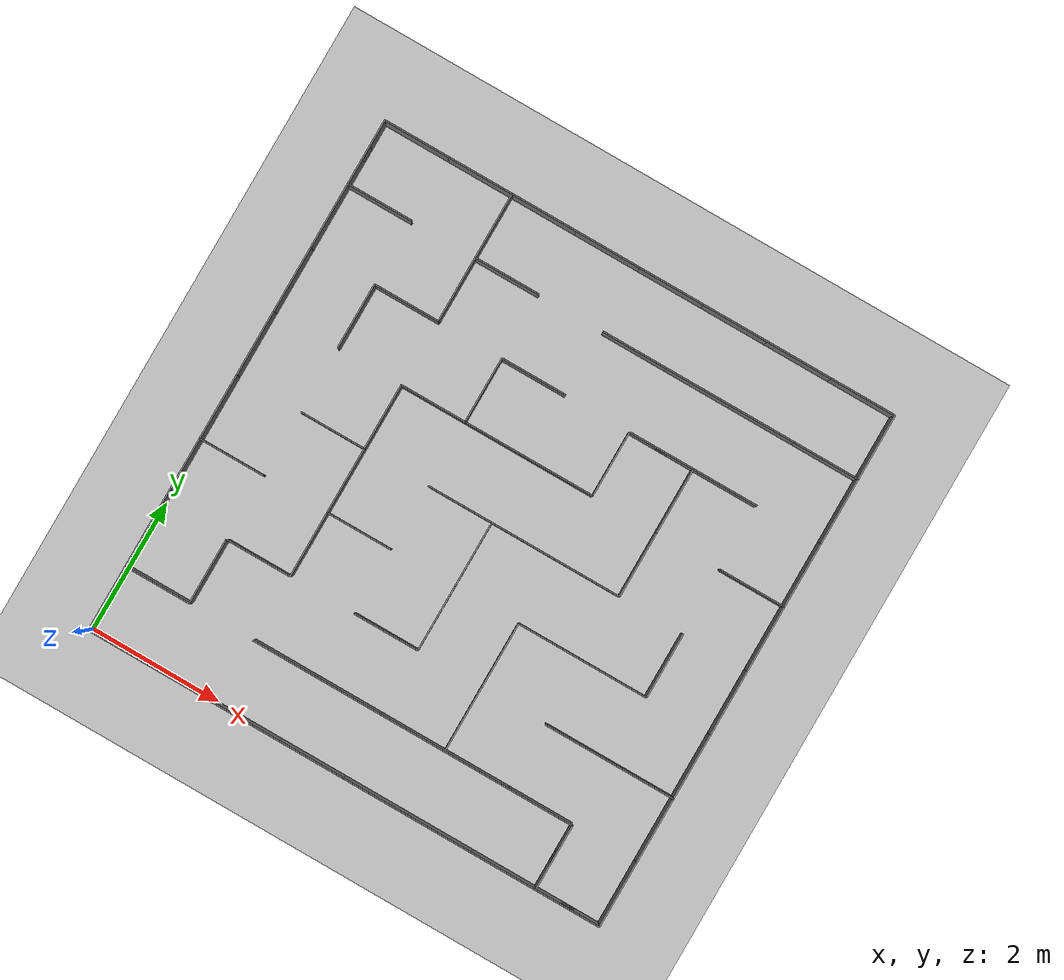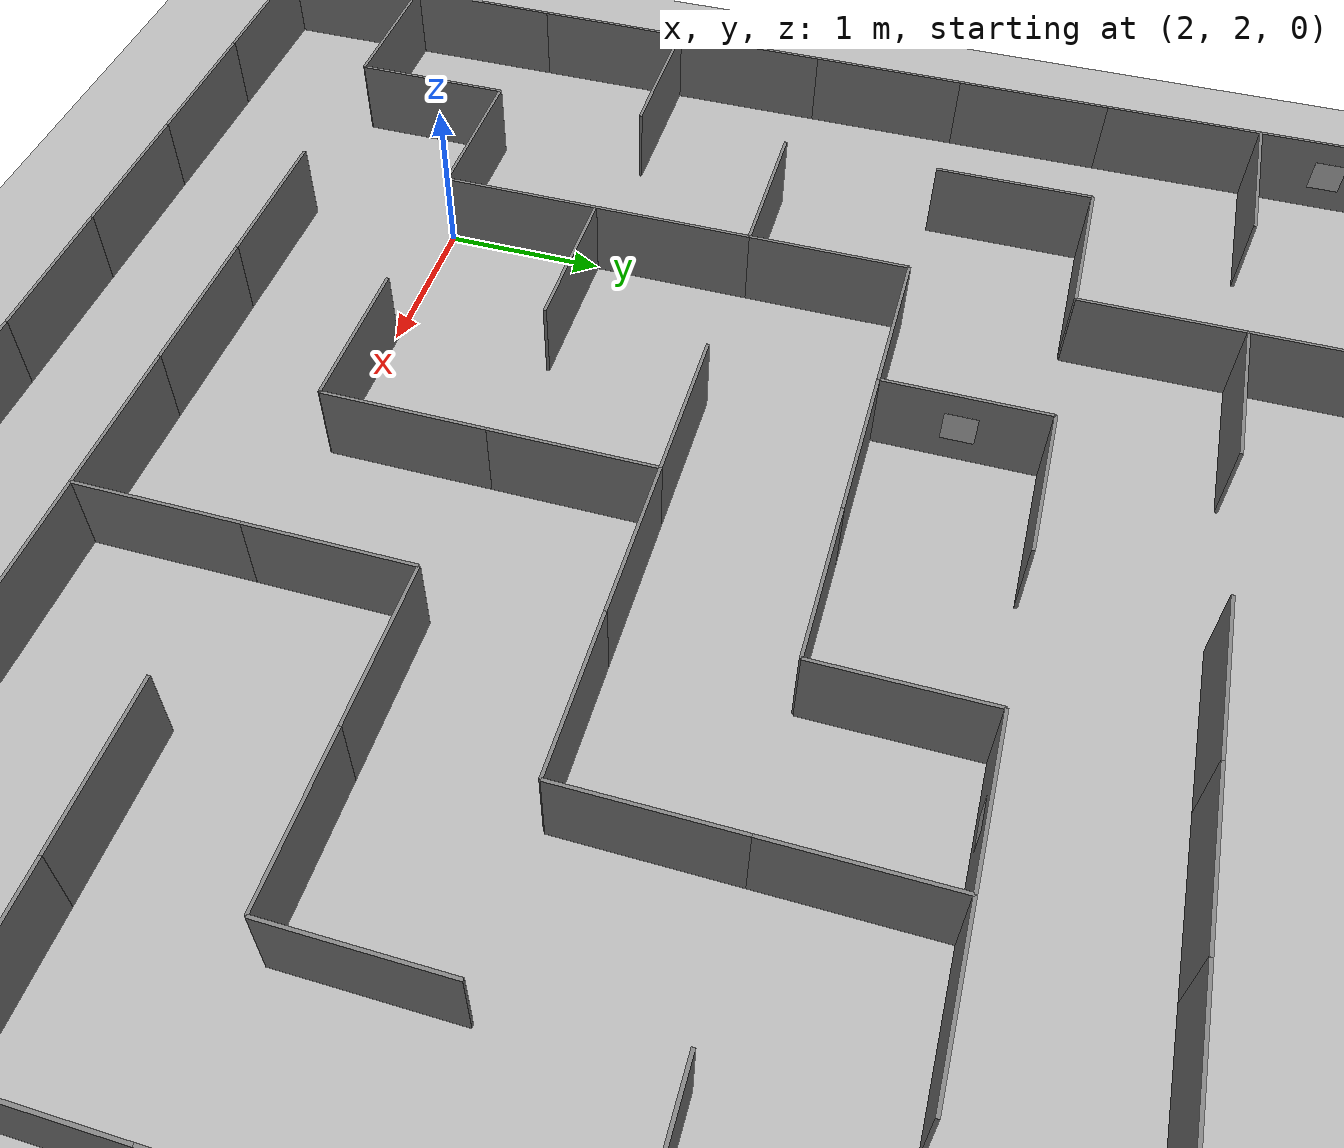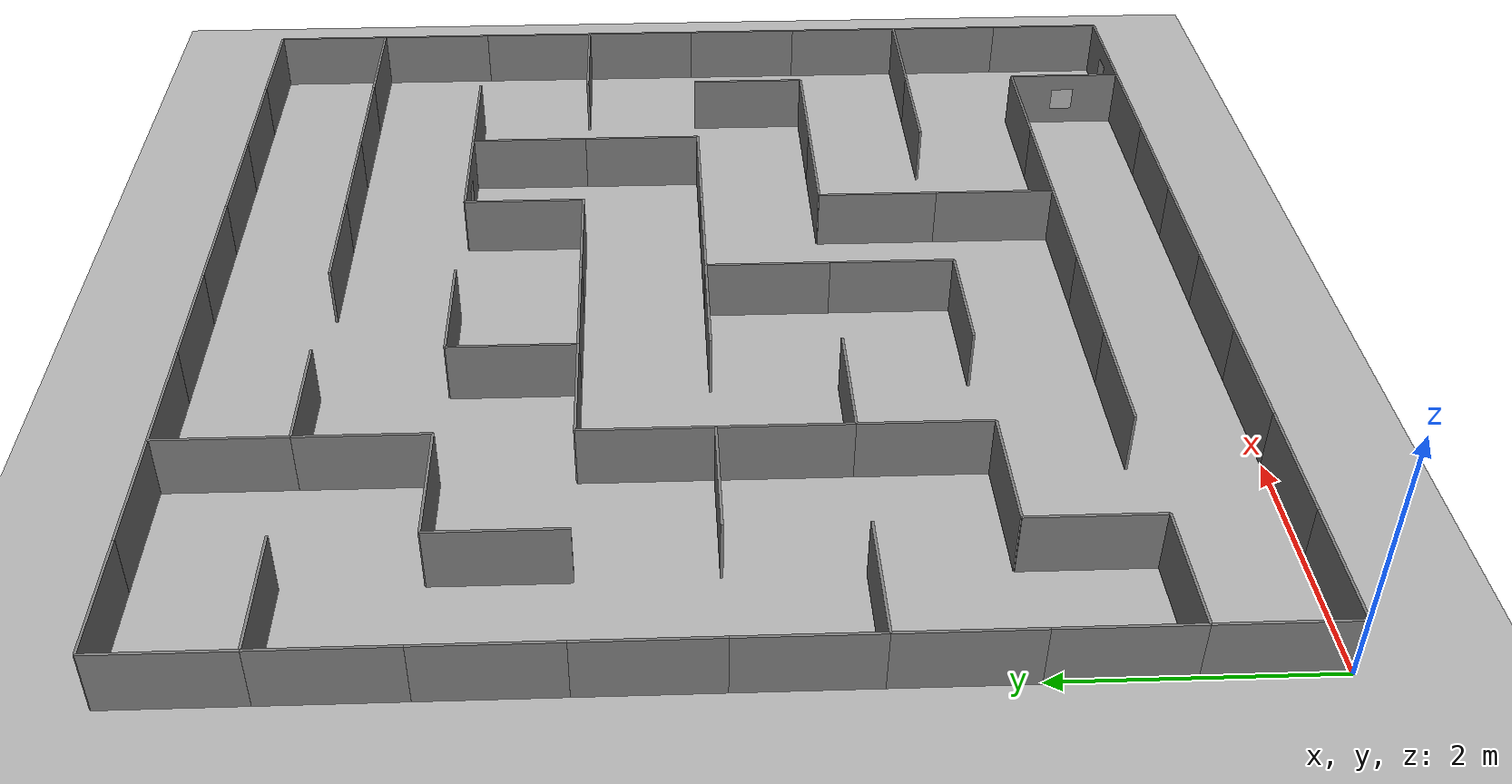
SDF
<?xml version="1.0" ?>
<sdf version='1.7'>
  <world name='maze_world'>

    <!-- Lighting -->
    <light name='sun' type='directional'>
      <cast_shadows>1</cast_shadows>
      <pose>0 0 10 0 -0 0</pose>
      <diffuse>0.8 0.8 0.8 1</diffuse>
      <specular>0.2 0.2 0.2 1</specular>
      <attenuation>
        <range>1000</range>
        <constant>0.9</constant>
        <linear>0.01</linear>
        <quadratic>0.001</quadratic>
      </attenuation>
      <direction>-0.5 0.1 -0.9</direction>
    </light>

    <!-- Ground Plane -->
    <model name='ground_plane'>
      <static>1</static>
      <link name='link'>
        <collision name='collision'>
          <geometry>
            <plane>
              <normal>0 0 1</normal>
              <size>100 100</size>
            </plane>
          </geometry>
          <surface>
            <friction>
              <ode>
                <mu>100</mu>
                <mu2>50</mu2>
              </ode>
            </friction>
          </surface>
        </collision>
        <visual name='visual'>
          <cast_shadows>0</cast_shadows>
          <geometry>
            <plane>
              <normal>0 0 1</normal>
              <size>100 100</size>
            </plane>
          </geometry>
          <material>
            <ambient>0.7 0.7 0.7 1</ambient>
            <diffuse>0.7 0.7 0.7 1</diffuse>
          </material>
        </visual>
      </link>
    </model>

    <!-- Physics -->
    <gravity>0 0 -9.8</gravity>
    <physics type='ode'>
      <max_step_size>0.001</max_step_size>
      <real_time_factor>1</real_time_factor>
      <real_time_update_rate>1000</real_time_update_rate>
    </physics>

    <!-- Scene -->
    <scene>
      <ambient>0.6 0.6 0.6 1</ambient>
      <background>0.7 0.7 0.7 1</background>
      <shadows>1</shadows>
    </scene>

    <!-- Complete Maze Structure -->
    <model name='maze'>
      <static>1</static>
      <pose>0 0 0 0 0 0</pose>

      <!-- ========== ROW 0 (y=0 to y=1) ========== -->

      <!-- Cell (0,0) - walls: north, south, west -->
      <link name='r0c0_south'>
        <pose>0.5 0 0.25 0 0 0</pose>
        <collision name='collision'>
          <geometry>
            <box><size>1.0 0.02 0.5</size></box>
          </geometry>
        </collision>
        <visual name='visual'>
          <geometry>
            <box><size>1.0 0.02 0.5</size></box>
          </geometry>
          <material>
            <ambient>0.5 0.5 0.5 1</ambient>
            <diffuse>0.5 0.5 0.5 1</diffuse>
          </material>
        </visual>
      </link>

      <link name='r0c0_north'>
        <pose>0.5 1 0.25 0 0 0</pose>
        <collision name='collision'>
          <geometry>
            <box><size>1.0 0.02 0.5</size></box>
          </geometry>
        </collision>
        <visual name='visual'>
          <geometry>
            <box><size>1.0 0.02 0.5</size></box>
          </geometry>
          <material>
            <ambient>0.5 0.5 0.5 1</ambient>
            <diffuse>0.5 0.5 0.5 1</diffuse>
          </material>
        </visual>
      </link>

      <link name='r0c0_west'>
        <pose>0 0.5 0.25 0 0 0</pose>
        <collision name='collision'>
          <geometry>
            <box><size>0.02 1.0 0.5</size></box>
          </geometry>
        </collision>
        <visual name='visual'>
          <geometry>
            <box><size>0.02 1.0 0.5</size></box>
          </geometry>
          <material>
            <ambient>0.5 0.5 0.5 1</ambient>
            <diffuse>0.5 0.5 0.5 1</diffuse>
          </material>
        </visual>
      </link>

      <!-- Cell (0,1) - walls: south, marker on north -->
      <link name='r0c1_south'>
        <pose>1.5 0 0.25 0 0 0</pose>
        <collision name='collision'>
          <geometry>
            <box><size>1.0 0.02 0.5</size></box>
          </geometry>
        </collision>
        <visual name='visual'>
          <geometry>
            <box><size>1.0 0.02 0.5</size></box>
          </geometry>
          <material>
            <ambient>0.5 0.5 0.5 1</ambient>
            <diffuse>0.5 0.5 0.5 1</diffuse>
          </material>
        </visual>
      </link>

      <!-- Cell (0,2) - walls: north, south -->
      <link name='r0c2_south'>
        <pose>2.5 0 0.25 0 0 0</pose>
        <collision name='collision'>
          <geometry>
            <box><size>1.0 0.02 0.5</size></box>
          </geometry>
        </collision>
        <visual name='visual'>
          <geometry>
            <box><size>1.0 0.02 0.5</size></box>
          </geometry>
          <material>
            <ambient>0.5 0.5 0.5 1</ambient>
            <diffuse>0.5 0.5 0.5 1</diffuse>
          </material>
        </visual>
      </link>

      <link name='r0c2_north'>
        <pose>2.5 1 0.25 0 0 0</pose>
        <collision name='collision'>
          <geometry>
            <box><size>1.0 0.02 0.5</size></box>
          </geometry>
        </collision>
        <visual name='visual'>
          <geometry>
            <box><size>1.0 0.02 0.5</size></box>
          </geometry>
          <material>
            <ambient>0.5 0.5 0.5 1</ambient>
            <diffuse>0.5 0.5 0.5 1</diffuse>
          </material>
        </visual>
      </link>

      <!-- Cell (0,3) - walls: north, south -->
      <link name='r0c3_south'>
        <pose>3.5 0 0.25 0 0 0</pose>
        <collision name='collision'>
          <geometry>
            <box><size>1.0 0.02 0.5</size></box>
          </geometry>
        </collision>
        <visual name='visual'>
          <geometry>
            <box><size>1.0 0.02 0.5</size></box>
          </geometry>
          <material>
            <ambient>0.5 0.5 0.5 1</ambient>
            <diffuse>0.5 0.5 0.5 1</diffuse>
          </material>
        </visual>
      </link>

      <link name='r0c3_north'>
        <pose>3.5 1 0.25 0 0 0</pose>
        <collision name='collision'>
          <geometry>
            <box><size>1.0 0.02 0.5</size></box>
          </geometry>
        </collision>
        <visual name='visual'>
          <geometry>
            <box><size>1.0 0.02 0.5</size></box>
          </geometry>
          <material>
            <ambient>0.5 0.5 0.5 1</ambient>
            <diffuse>0.5 0.5 0.5 1</diffuse>
          </material>
        </visual>
      </link>

      <!-- Cell (0,4) - walls: north, south -->
      <link name='r0c4_south'>
        <pose>4.5 0 0.25 0 0 0</pose>
        <collision name='collision'>
          <geometry>
            <box><size>1.0 0.02 0.5</size></box>
          </geometry>
        </collision>
        <visual name='visual'>
          <geometry>
            <box><size>1.0 0.02 0.5</size></box>
          </geometry>
          <material>
            <ambient>0.5 0.5 0.5 1</ambient>
            <diffuse>0.5 0.5 0.5 1</diffuse>
          </material>
        </visual>
      </link>

      <link name='r0c4_north'>
        <pose>4.5 1 0.25 0 0 0</pose>
        <collision name='collision'>
          <geometry>
            <box><size>1.0 0.02 0.5</size></box>
          </geometry>
        </collision>
        <visual name='visual'>
          <geometry>
            <box><size>1.0 0.02 0.5</size></box>
          </geometry>
          <material>
            <ambient>0.5 0.5 0.5 1</ambient>
            <diffuse>0.5 0.5 0.5 1</diffuse>
          </material>
        </visual>
      </link>

      <!-- Cell (0,5) - walls: north, south -->
      <link name='r0c5_south'>
        <pose>5.5 0 0.25 0 0 0</pose>
        <collision name='collision'>
          <geometry>
            <box><size>1.0 0.02 0.5</size></box>
          </geometry>
        </collision>
        <visual name='visual'>
          <geometry>
            <box><size>1.0 0.02 0.5</size></box>
          </geometry>
          <material>
            <ambient>0.5 0.5 0.5 1</ambient>
            <diffuse>0.5 0.5 0.5 1</diffuse>
          </material>
        </visual>
      </link>

      <link name='r0c5_north'>
        <pose>5.5 1 0.25 0 0 0</pose>
        <collision name='collision'>
          <geometry>
            <box><size>1.0 0.02 0.5</size></box>
          </geometry>
        </collision>
        <visual name='visual'>
          <geometry>
            <box><size>1.0 0.02 0.5</size></box>
          </geometry>
          <material>
            <ambient>0.5 0.5 0.5 1</ambient>
            <diffuse>0.5 0.5 0.5 1</diffuse>
          </material>
        </visual>
      </link>

      <!-- Cell (0,6) - walls: north, south, east, marker on east -->
      <link name='r0c6_south'>
        <pose>6.5 0 0.25 0 0 0</pose>
        <collision name='collision'>
          <geometry>
            <box><size>1.0 0.02 0.5</size></box>
          </geometry>
        </collision>
        <visual name='visual'>
          <geometry>
            <box><size>1.0 0.02 0.5</size></box>
          </geometry>
          <material>
            <ambient>0.5 0.5 0.5 1</ambient>
            <diffuse>0.5 0.5 0.5 1</diffuse>
          </material>
        </visual>
      </link>

      <link name='r0c6_north'>
        <pose>6.5 1 0.25 0 0 0</pose>
        <collision name='collision'>
          <geometry>
            <box><size>1.0 0.02 0.5</size></box>
          </geometry>
        </collision>
        <visual name='visual'>
          <geometry>
            <box><size>1.0 0.02 0.5</size></box>
          </geometry>
          <material>
            <ambient>0.5 0.5 0.5 1</ambient>
            <diffuse>0.5 0.5 0.5 1</diffuse>
          </material>
        </visual>
      </link>

      <link name='r0c6_east'>
        <pose>7 0.5 0.25 0 0 0</pose>
        <collision name='collision'>
          <geometry>
            <box><size>0.02 1.0 0.5</size></box>
          </geometry>
        </collision>
        <visual name='visual'>
          <geometry>
            <box><size>0.02 1.0 0.5</size></box>
          </geometry>
          <material>
            <ambient>0.5 0.5 0.5 1</ambient>
            <diffuse>0.5 0.5 0.5 1</diffuse>
          </material>
        </visual>
      </link>

      <!-- Cell (0,7) - walls: north, south, east, west -->
      <link name='r0c7_south'>
        <pose>7.5 0 0.25 0 0 0</pose>
        <collision name='collision'>
          <geometry>
            <box><size>1.0 0.02 0.5</size></box>
          </geometry>
        </collision>
        <visual name='visual'>
          <geometry>
            <box><size>1.0 0.02 0.5</size></box>
          </geometry>
          <material>
            <ambient>0.5 0.5 0.5 1</ambient>
            <diffuse>0.5 0.5 0.5 1</diffuse>
          </material>
        </visual>
      </link>

      <link name='r0c7_east'>
        <pose>8 0.5 0.25 0 0 0</pose>
        <collision name='collision'>
          <geometry>
            <box><size>0.02 1.0 0.5</size></box>
          </geometry>
        </collision>
        <visual name='visual'>
          <geometry>
            <box><size>0.02 1.0 0.5</size></box>
          </geometry>
          <material>
            <ambient>0.5 0.5 0.5 1</ambient>
            <diffuse>0.5 0.5 0.5 1</diffuse>
          </material>
        </visual>
      </link>

      <link name='r0c7_west'>
        <pose>7 0.5 0.25 0 0 0</pose>
        <collision name='collision'>
          <geometry>
            <box><size>0.02 1.0 0.5</size></box>
          </geometry>
        </collision>
        <visual name='visual'>
          <geometry>
            <box><size>0.02 1.0 0.5</size></box>
          </geometry>
          <material>
            <ambient>0.5 0.5 0.5 1</ambient>
            <diffuse>0.5 0.5 0.5 1</diffuse>
          </material>
        </visual>
      </link>

      <!-- ========== ROW 1 (y=1 to y=2) ========== -->
      <!-- Note: north wall of row 0 = south wall of row 1, already created above -->

      <!-- Cell (1,0) - walls: east, west, marker on south (which is r2c0_north) -->
      <link name='r1c0_east'>
        <pose>1 1.5 0.25 0 0 0</pose>
        <collision name='collision'>
          <geometry>
            <box><size>0.02 1.0 0.5</size></box>
          </geometry>
        </collision>
        <visual name='visual'>
          <geometry>
            <box><size>0.02 1.0 0.5</size></box>
          </geometry>
          <material>
            <ambient>0.5 0.5 0.5 1</ambient>
            <diffuse>0.5 0.5 0.5 1</diffuse>
          </material>
        </visual>
      </link>

      <link name='r1c0_west'>
        <pose>0 1.5 0.25 0 0 0</pose>
        <collision name='collision'>
          <geometry>
            <box><size>0.02 1.0 0.5</size></box>
          </geometry>
        </collision>
        <visual name='visual'>
          <geometry>
            <box><size>0.02 1.0 0.5</size></box>
          </geometry>
          <material>
            <ambient>0.5 0.5 0.5 1</ambient>
            <diffuse>0.5 0.5 0.5 1</diffuse>
          </material>
        </visual>
      </link>

      <!-- Cell (1,1) - walls: west -->
      <!-- south wall is shared (r0c1_north) -->
      <link name='r1c1_west'>
        <pose>1 1.5 0.25 0 0 0</pose>
        <collision name='collision'>
          <geometry>
            <box><size>0.02 1.0 0.5</size></box>
          </geometry>
        </collision>
        <visual name='visual'>
          <geometry>
            <box><size>0.02 1.0 0.5</size></box>
          </geometry>
          <material>
            <ambient>0.5 0.5 0.5 1</ambient>
            <diffuse>0.5 0.5 0.5 1</diffuse>
          </material>
        </visual>
      </link>

      <link name='r1c1_north'>
        <pose>1.5 2 0.25 0 0 0</pose>
        <collision name='collision'>
          <geometry>
            <box><size>1.0 0.02 0.5</size></box>
          </geometry>
        </collision>
        <visual name='visual'>
          <geometry>
            <box><size>1.0 0.02 0.5</size></box>
          </geometry>
          <material>
            <ambient>0.5 0.5 0.5 1</ambient>
            <diffuse>0.5 0.5 0.5 1</diffuse>
          </material>
        </visual>
      </link>

      <!-- Cell (1,3) - walls: north (new) -->
      <!-- south wall is shared (r0c3_north) -->
      <link name='r1c3_north'>
        <pose>3.5 2 0.25 0 0 0</pose>
        <collision name='collision'>
          <geometry>
            <box><size>1.0 0.02 0.5</size></box>
          </geometry>
        </collision>
        <visual name='visual'>
          <geometry>
            <box><size>1.0 0.02 0.5</size></box>
          </geometry>
          <material>
            <ambient>0.5 0.5 0.5 1</ambient>
            <diffuse>0.5 0.5 0.5 1</diffuse>
          </material>
        </visual>
      </link>

      <!-- Cell (1,4) - walls: north (new), east -->
      <!-- south wall is shared (r0c4_north) -->
      <link name='r1c4_east'>
        <pose>5 1.5 0.25 0 0 0</pose>
        <collision name='collision'>
          <geometry>
            <box><size>0.02 1.0 0.5</size></box>
          </geometry>
        </collision>
        <visual name='visual'>
          <geometry>
            <box><size>0.02 1.0 0.5</size></box>
          </geometry>
          <material>
            <ambient>0.5 0.5 0.5 1</ambient>
            <diffuse>0.5 0.5 0.5 1</diffuse>
          </material>
        </visual>
      </link>

      <!-- Cell (1,5) - walls: north (new), west -->
      <!-- south wall is shared (r0c5_north) -->
      <link name='r1c5_west'>
        <pose>5 1.5 0.25 0 0 0</pose>
        <collision name='collision'>
          <geometry>
            <box><size>0.02 1.0 0.5</size></box>
          </geometry>
        </collision>
        <visual name='visual'>
          <geometry>
            <box><size>0.02 1.0 0.5</size></box>
          </geometry>
          <material>
            <ambient>0.5 0.5 0.5 1</ambient>
            <diffuse>0.5 0.5 0.5 1</diffuse>
          </material>
        </visual>
      </link>

      <!-- Cell (1,6) - walls: north (new) -->
      <!-- south wall is shared (r0c6_north) -->
      <link name='r1c6_north'>
        <pose>6.5 2 0.25 0 0 0</pose>
        <collision name='collision'>
          <geometry>
            <box><size>1.0 0.02 0.5</size></box>
          </geometry>
        </collision>
        <visual name='visual'>
          <geometry>
            <box><size>1.0 0.02 0.5</size></box>
          </geometry>
          <material>
            <ambient>0.5 0.5 0.5 1</ambient>
            <diffuse>0.5 0.5 0.5 1</diffuse>
          </material>
        </visual>
      </link>

      <!-- Cell (1,7) - walls: east -->
      <!-- south wall is shared (r0c7_north) -->
      <link name='r1c7_north'>
        <pose>7.5 2 0.25 0 0 0</pose>
        <collision name='collision'>
          <geometry>
            <box><size>1.0 0.02 0.5</size></box>
          </geometry>
        </collision>
        <visual name='visual'>
          <geometry>
            <box><size>1.0 0.02 0.5</size></box>
          </geometry>
          <material>
            <ambient>0.5 0.5 0.5 1</ambient>
            <diffuse>0.5 0.5 0.5 1</diffuse>
          </material>
        </visual>
      </link>

      <link name='r1c7_east'>
        <pose>8 1.5 0.25 0 0 0</pose>
        <collision name='collision'>
          <geometry>
            <box><size>0.02 1.0 0.5</size></box>
          </geometry>
        </collision>
        <visual name='visual'>
          <geometry>
            <box><size>0.02 1.0 0.5</size></box>
          </geometry>
          <material>
            <ambient>0.5 0.5 0.5 1</ambient>
            <diffuse>0.5 0.5 0.5 1</diffuse>
          </material>
        </visual>
      </link>

      <!-- ========== ROW 2 (y=2 to y=3) ========== -->

      <!-- Cell (2,0) - walls: north (new), west -->
      <!-- south wall is shared (r1c0 has no south wall) -->
      <link name='r2c0_north'>
        <pose>0.5 3 0.25 0 0 0</pose>
        <collision name='collision'>
          <geometry>
            <box><size>1.0 0.02 0.5</size></box>
          </geometry>
        </collision>
        <visual name='visual'>
          <geometry>
            <box><size>1.0 0.02 0.5</size></box>
          </geometry>
          <material>
            <ambient>0.5 0.5 0.5 1</ambient>
            <diffuse>0.5 0.5 0.5 1</diffuse>
          </material>
        </visual>
      </link>

      <link name='r2c0_west'>
        <pose>0 2.5 0.25 0 0 0</pose>
        <collision name='collision'>
          <geometry>
            <box><size>0.02 1.0 0.5</size></box>
          </geometry>
        </collision>
        <visual name='visual'>
          <geometry>
            <box><size>0.02 1.0 0.5</size></box>
          </geometry>
          <material>
            <ambient>0.5 0.5 0.5 1</ambient>
            <diffuse>0.5 0.5 0.5 1</diffuse>
          </material>
        </visual>
      </link>

      <!-- Cell (2,1) - walls: east -->
      <!-- south wall is shared (r1c1_north) -->
      <link name='r2c1_east'>
        <pose>2 2.5 0.25 0 0 0</pose>
        <collision name='collision'>
          <geometry>
            <box><size>0.02 1.0 0.5</size></box>
          </geometry>
        </collision>
        <visual name='visual'>
          <geometry>
            <box><size>0.02 1.0 0.5</size></box>
          </geometry>
          <material>
            <ambient>0.5 0.5 0.5 1</ambient>
            <diffuse>0.5 0.5 0.5 1</diffuse>
          </material>
        </visual>
      </link>

      <!-- Cell (2,2) - walls: north (new), west -->
      <!-- south wall is shared (r1c2 has no north) -->
      <link name='r2c2_north'>
        <pose>2.5 3 0.25 0 0 0</pose>
        <collision name='collision'>
          <geometry>
            <box><size>1.0 0.02 0.5</size></box>
          </geometry>
        </collision>
        <visual name='visual'>
          <geometry>
            <box><size>1.0 0.02 0.5</size></box>
          </geometry>
          <material>
            <ambient>0.5 0.5 0.5 1</ambient>
            <diffuse>0.5 0.5 0.5 1</diffuse>
          </material>
        </visual>
      </link>

      <link name='r2c2_west'>
        <pose>2 2.5 0.25 0 0 0</pose>
        <collision name='collision'>
          <geometry>
            <box><size>0.02 1.0 0.5</size></box>
          </geometry>
        </collision>
        <visual name='visual'>
          <geometry>
            <box><size>0.02 1.0 0.5</size></box>
          </geometry>
          <material>
            <ambient>0.5 0.5 0.5 1</ambient>
            <diffuse>0.5 0.5 0.5 1</diffuse>
          </material>
        </visual>
      </link>

      <!-- Cell (2,3) - walls: east -->
      <!-- south wall is shared (r1c3_north) -->
      <link name='r2c3_east'>
        <pose>4 2.5 0.25 0 0 0</pose>
        <collision name='collision'>
          <geometry>
            <box><size>0.02 1.0 0.5</size></box>
          </geometry>
        </collision>
        <visual name='visual'>
          <geometry>
            <box><size>0.02 1.0 0.5</size></box>
          </geometry>
          <material>
            <ambient>0.5 0.5 0.5 1</ambient>
            <diffuse>0.5 0.5 0.5 1</diffuse>
          </material>
        </visual>
      </link>

      <!-- Cell (2,4) - walls: east, west -->
      <!-- south wall is shared (r1c4_north) -->
      <link name='r2c4_east'>
        <pose>5 2.5 0.25 0 0 0</pose>
        <collision name='collision'>
          <geometry>
            <box><size>0.02 1.0 0.5</size></box>
          </geometry>
        </collision>
        <visual name='visual'>
          <geometry>
            <box><size>0.02 1.0 0.5</size></box>
          </geometry>
          <material>
            <ambient>0.5 0.5 0.5 1</ambient>
            <diffuse>0.5 0.5 0.5 1</diffuse>
          </material>
        </visual>
      </link>

      <link name='r2c4_west'>
        <pose>4 2.5 0.25 0 0 0</pose>
        <collision name='collision'>
          <geometry>
            <box><size>0.02 1.0 0.5</size></box>
          </geometry>
        </collision>
        <visual name='visual'>
          <geometry>
            <box><size>0.02 1.0 0.5</size></box>
          </geometry>
          <material>
            <ambient>0.5 0.5 0.5 1</ambient>
            <diffuse>0.5 0.5 0.5 1</diffuse>
          </material>
        </visual>
      </link>

      <!-- Cell (2,5) - walls: north (new), west -->
      <!-- south wall is shared (r1c5 has no north) -->
      <link name='r2c5_north'>
        <pose>5.5 3 0.25 0 0 0</pose>
        <collision name='collision'>
          <geometry>
            <box><size>1.0 0.02 0.5</size></box>
          </geometry>
        </collision>
        <visual name='visual'>
          <geometry>
            <box><size>1.0 0.02 0.5</size></box>
          </geometry>
          <material>
            <ambient>0.5 0.5 0.5 1</ambient>
            <diffuse>0.5 0.5 0.5 1</diffuse>
          </material>
        </visual>
      </link>

      <link name='r2c5_west'>
        <pose>5 2.5 0.25 0 0 0</pose>
        <collision name='collision'>
          <geometry>
            <box><size>0.02 1.0 0.5</size></box>
          </geometry>
        </collision>
        <visual name='visual'>
          <geometry>
            <box><size>0.02 1.0 0.5</size></box>
          </geometry>
          <material>
            <ambient>0.5 0.5 0.5 1</ambient>
            <diffuse>0.5 0.5 0.5 1</diffuse>
          </material>
        </visual>
      </link>

      <!-- Cell (2,6) - walls: north (new) -->
      <!-- south wall is shared (r1c6_north) -->
      <link name='r2c6_north'>
        <pose>6.5 3 0.25 0 0 0</pose>
        <collision name='collision'>
          <geometry>
            <box><size>1.0 0.02 0.5</size></box>
          </geometry>
        </collision>
        <visual name='visual'>
          <geometry>
            <box><size>1.0 0.02 0.5</size></box>
          </geometry>
          <material>
            <ambient>0.5 0.5 0.5 1</ambient>
            <diffuse>0.5 0.5 0.5 1</diffuse>
          </material>
        </visual>
      </link>

      <!-- Cell (2,7) - walls: east -->
      <!-- south wall is shared (r1c7_north) -->
      <link name='r2c7_east'>
        <pose>8 2.5 0.25 0 0 0</pose>
        <collision name='collision'>
          <geometry>
            <box><size>0.02 1.0 0.5</size></box>
          </geometry>
        </collision>
        <visual name='visual'>
          <geometry>
            <box><size>0.02 1.0 0.5</size></box>
          </geometry>
          <material>
            <ambient>0.5 0.5 0.5 1</ambient>
            <diffuse>0.5 0.5 0.5 1</diffuse>
          </material>
        </visual>
      </link>

      <!-- ========== ROW 3 (y=3 to y=4) ========== -->

      <!-- Cell (3,0) - walls: west -->
      <!-- south wall is shared (r2c0_north) -->
      <link name='r3c0_west'>
        <pose>0 3.5 0.25 0 0 0</pose>
        <collision name='collision'>
          <geometry>
            <box><size>0.02 1.0 0.5</size></box>
          </geometry>
        </collision>
        <visual name='visual'>
          <geometry>
            <box><size>0.02 1.0 0.5</size></box>
          </geometry>
          <material>
            <ambient>0.5 0.5 0.5 1</ambient>
            <diffuse>0.5 0.5 0.5 1</diffuse>
          </material>
        </visual>
      </link>

      <!-- Cell (3,1) - walls: north (new), east -->
      <!-- south wall is shared (r2c1 has no north) -->
      <link name='r3c1_north'>
        <pose>1.5 4 0.25 0 0 0</pose>
        <collision name='collision'>
          <geometry>
            <box><size>1.0 0.02 0.5</size></box>
          </geometry>
        </collision>
        <visual name='visual'>
          <geometry>
            <box><size>1.0 0.02 0.5</size></box>
          </geometry>
          <material>
            <ambient>0.5 0.5 0.5 1</ambient>
            <diffuse>0.5 0.5 0.5 1</diffuse>
          </material>
        </visual>
      </link>

      <link name='r3c1_east'>
        <pose>2 3.5 0.25 0 0 0</pose>
        <collision name='collision'>
          <geometry>
            <box><size>0.02 1.0 0.5</size></box>
          </geometry>
        </collision>
        <visual name='visual'>
          <geometry>
            <box><size>0.02 1.0 0.5</size></box>
          </geometry>
          <material>
            <ambient>0.5 0.5 0.5 1</ambient>
            <diffuse>0.5 0.5 0.5 1</diffuse>
          </material>
        </visual>
      </link>

      <!-- Cell (3,2) - walls: west -->
      <!-- south wall is shared (r2c2_north) -->
      <link name='r3c2_west'>
        <pose>2 3.5 0.25 0 0 0</pose>
        <collision name='collision'>
          <geometry>
            <box><size>0.02 1.0 0.5</size></box>
          </geometry>
        </collision>
        <visual name='visual'>
          <geometry>
            <box><size>0.02 1.0 0.5</size></box>
          </geometry>
          <material>
            <ambient>0.5 0.5 0.5 1</ambient>
            <diffuse>0.5 0.5 0.5 1</diffuse>
          </material>
        </visual>
      </link>

      <!-- Cell (3,3) - walls: north (new), east -->
      <!-- south wall is shared (r2c3 has no north) -->
      <link name='r3c3_north'>
        <pose>3.5 4 0.25 0 0 0</pose>
        <collision name='collision'>
          <geometry>
            <box><size>1.0 0.02 0.5</size></box>
          </geometry>
        </collision>
        <visual name='visual'>
          <geometry>
            <box><size>1.0 0.02 0.5</size></box>
          </geometry>
          <material>
            <ambient>0.5 0.5 0.5 1</ambient>
            <diffuse>0.5 0.5 0.5 1</diffuse>
          </material>
        </visual>
      </link>

      <link name='r3c3_east'>
        <pose>4 3.5 0.25 0 0 0</pose>
        <collision name='collision'>
          <geometry>
            <box><size>0.02 1.0 0.5</size></box>
          </geometry>
        </collision>
        <visual name='visual'>
          <geometry>
            <box><size>0.02 1.0 0.5</size></box>
          </geometry>
          <material>
            <ambient>0.5 0.5 0.5 1</ambient>
            <diffuse>0.5 0.5 0.5 1</diffuse>
          </material>
        </visual>
      </link>

      <!-- Cell (3,4) - walls: north (new), west -->
      <!-- south wall is shared (r2c4 has no north wall) -->
      <link name='r3c4_north'>
        <pose>4.5 4 0.25 0 0 0</pose>
        <collision name='collision'>
          <geometry>
            <box><size>1.0 0.02 0.5</size></box>
          </geometry>
        </collision>
        <visual name='visual'>
          <geometry>
            <box><size>1.0 0.02 0.5</size></box>
          </geometry>
          <material>
            <ambient>0.5 0.5 0.5 1</ambient>
            <diffuse>0.5 0.5 0.5 1</diffuse>
          </material>
        </visual>
      </link>

      <link name='r3c4_west'>
        <pose>4 3.5 0.25 0 0 0</pose>
        <collision name='collision'>
          <geometry>
            <box><size>0.02 1.0 0.5</size></box>
          </geometry>
        </collision>
        <visual name='visual'>
          <geometry>
            <box><size>0.02 1.0 0.5</size></box>
          </geometry>
          <material>
            <ambient>0.5 0.5 0.5 1</ambient>
            <diffuse>0.5 0.5 0.5 1</diffuse>
          </material>
        </visual>
      </link>

      <!-- Cell (3,5) - walls: north (new) -->
      <!-- south wall is shared (r2c5 has no north wall) -->
      <link name='r3c5_north'>
        <pose>5.5 4 0.25 0 0 0</pose>
        <collision name='collision'>
          <geometry>
            <box><size>1.0 0.02 0.5</size></box>
          </geometry>
        </collision>
        <visual name='visual'>
          <geometry>
            <box><size>1.0 0.02 0.5</size></box>
          </geometry>
          <material>
            <ambient>0.5 0.5 0.5 1</ambient>
            <diffuse>0.5 0.5 0.5 1</diffuse>
          </material>
        </visual>
      </link>

      <!-- Cell (3,6) - walls: east -->
      <!-- south wall is shared (r2c6_north) -->
      <link name='r3c6_east'>
        <pose>7 3.5 0.25 0 0 0</pose>
        <collision name='collision'>
          <geometry>
            <box><size>0.02 1.0 0.5</size></box>
          </geometry>
        </collision>
        <visual name='visual'>
          <geometry>
            <box><size>0.02 1.0 0.5</size></box>
          </geometry>
          <material>
            <ambient>0.5 0.5 0.5 1</ambient>
            <diffuse>0.5 0.5 0.5 1</diffuse>
          </material>
        </visual>
      </link>

      <!-- Cell (3,7) - walls: east, west -->
      <!-- south wall is shared (r2c7_north) -->
      <link name='r3c7_east'>
        <pose>8 3.5 0.25 0 0 0</pose>
        <collision name='collision'>
          <geometry>
            <box><size>0.02 1.0 0.5</size></box>
          </geometry>
        </collision>
        <visual name='visual'>
          <geometry>
            <box><size>0.02 1.0 0.5</size></box>
          </geometry>
          <material>
            <ambient>0.5 0.5 0.5 1</ambient>
            <diffuse>0.5 0.5 0.5 1</diffuse>
          </material>
        </visual>
      </link>

      <link name='r3c7_west'>
        <pose>7 3.5 0.25 0 0 0</pose>
        <collision name='collision'>
          <geometry>
            <box><size>0.02 1.0 0.5</size></box>
          </geometry>
        </collision>
        <visual name='visual'>
          <geometry>
            <box><size>0.02 1.0 0.5</size></box>
          </geometry>
          <material>
            <ambient>0.5 0.5 0.5 1</ambient>
            <diffuse>0.5 0.5 0.5 1</diffuse>
          </material>
        </visual>
      </link>

      <!-- ========== ROW 4 (y=4 to y=5) ========== -->

      <!-- Cell (4,0) - walls: west -->
      <!-- south wall is shared (r3c0_north) -->
      <link name='r4c0_west'>
        <pose>0 4.5 0.25 0 0 0</pose>
        <collision name='collision'>
          <geometry>
            <box><size>0.02 1.0 0.5</size></box>
          </geometry>
        </collision>
        <visual name='visual'>
          <geometry>
            <box><size>0.02 1.0 0.5</size></box>
          </geometry>
          <material>
            <ambient>0.5 0.5 0.5 1</ambient>
            <diffuse>0.5 0.5 0.5 1</diffuse>
          </material>
        </visual>
      </link>

      <!-- Cell (4,1) - walls: east -->
      <!-- south wall is shared (r3c1_north) -->
      <link name='r4c1_east'>
        <pose>2 4.5 0.25 0 0 0</pose>
        <collision name='collision'>
          <geometry>
            <box><size>0.02 1.0 0.5</size></box>
          </geometry>
        </collision>
        <visual name='visual'>
          <geometry>
            <box><size>0.02 1.0 0.5</size></box>
          </geometry>
          <material>
            <ambient>0.5 0.5 0.5 1</ambient>
            <diffuse>0.5 0.5 0.5 1</diffuse>
          </material>
        </visual>
      </link>

      <!-- Cell (4,2) - walls: north (new), west -->
      <!-- south wall is shared (r3c2 has no north) -->
      <link name='r4c2_north'>
        <pose>2.5 5 0.25 0 0 0</pose>
        <collision name='collision'>
          <geometry>
            <box><size>1.0 0.02 0.5</size></box>
          </geometry>
        </collision>
        <visual name='visual'>
          <geometry>
            <box><size>1.0 0.02 0.5</size></box>
          </geometry>
          <material>
            <ambient>0.5 0.5 0.5 1</ambient>
            <diffuse>0.5 0.5 0.5 1</diffuse>
          </material>
        </visual>
      </link>

      <link name='r4c2_west'>
        <pose>2 4.5 0.25 0 0 0</pose>
        <collision name='collision'>
          <geometry>
            <box><size>0.02 1.0 0.5</size></box>
          </geometry>
        </collision>
        <visual name='visual'>
          <geometry>
            <box><size>0.02 1.0 0.5</size></box>
          </geometry>
          <material>
            <ambient>0.5 0.5 0.5 1</ambient>
            <diffuse>0.5 0.5 0.5 1</diffuse>
          </material>
        </visual>
      </link>

      <!-- Cell (4,3) - walls: north (new) -->
      <!-- south wall is shared (r3c3 has no north wall) -->
      <link name='r4c3_north'>
        <pose>3.5 5 0.25 0 0 0</pose>
        <collision name='collision'>
          <geometry>
            <box><size>1.0 0.02 0.5</size></box>
          </geometry>
        </collision>
        <visual name='visual'>
          <geometry>
            <box><size>1.0 0.02 0.5</size></box>
          </geometry>
          <material>
            <ambient>0.5 0.5 0.5 1</ambient>
            <diffuse>0.5 0.5 0.5 1</diffuse>
          </material>
        </visual>
      </link>

      <!-- Cell (4,4) - walls: north (new) -->
      <!-- south wall is shared (r3c4 has no north wall) -->
      <link name='r4c4_north'>
        <pose>4.5 5 0.25 0 0 0</pose>
        <collision name='collision'>
          <geometry>
            <box><size>1.0 0.02 0.5</size></box>
          </geometry>
        </collision>
        <visual name='visual'>
          <geometry>
            <box><size>1.0 0.02 0.5</size></box>
          </geometry>
          <material>
            <ambient>0.5 0.5 0.5 1</ambient>
            <diffuse>0.5 0.5 0.5 1</diffuse>
          </material>
        </visual>
      </link>

      <!-- Cell (4,5) - walls: east -->
      <!-- south wall is shared (r3c5_north) -->
      <link name='r4c5_east'>
        <pose>6 4.5 0.25 0 0 0</pose>
        <collision name='collision'>
          <geometry>
            <box><size>0.02 1.0 0.5</size></box>
          </geometry>
        </collision>
        <visual name='visual'>
          <geometry>
            <box><size>0.02 1.0 0.5</size></box>
          </geometry>
          <material>
            <ambient>0.5 0.5 0.5 1</ambient>
            <diffuse>0.5 0.5 0.5 1</diffuse>
          </material>
        </visual>
      </link>

      <!-- Cell (4,6) - walls: west -->
      <!-- south wall is shared (r3c6_north) -->
      <link name='r4c6_west'>
        <pose>6 4.5 0.25 0 0 0</pose>
        <collision name='collision'>
          <geometry>
            <box><size>0.02 1.0 0.5</size></box>
          </geometry>
        </collision>
        <visual name='visual'>
          <geometry>
            <box><size>0.02 1.0 0.5</size></box>
          </geometry>
          <material>
            <ambient>0.5 0.5 0.5 1</ambient>
            <diffuse>0.5 0.5 0.5 1</diffuse>
          </material>
        </visual>
      </link>

      <!-- Cell (4,7) - walls: north (new), east -->
      <!-- south wall is shared (r3c7 has no north wall) -->
      <link name='r4c7_north'>
        <pose>7.5 5 0.25 0 0 0</pose>
        <collision name='collision'>
          <geometry>
            <box><size>1.0 0.02 0.5</size></box>
          </geometry>
        </collision>
        <visual name='visual'>
          <geometry>
            <box><size>1.0 0.02 0.5</size></box>
          </geometry>
          <material>
            <ambient>0.5 0.5 0.5 1</ambient>
            <diffuse>0.5 0.5 0.5 1</diffuse>
          </material>
        </visual>
      </link>

      <link name='r4c7_east'>
        <pose>8 4.5 0.25 0 0 0</pose>
        <collision name='collision'>
          <geometry>
            <box><size>0.02 1.0 0.5</size></box>
          </geometry>
        </collision>
        <visual name='visual'>
          <geometry>
            <box><size>0.02 1.0 0.5</size></box>
          </geometry>
          <material>
            <ambient>0.5 0.5 0.5 1</ambient>
            <diffuse>0.5 0.5 0.5 1</diffuse>
          </material>
        </visual>
      </link>

      <!-- ========== ROW 5 (y=5 to y=6) ========== -->

      <!-- Cell (5,0) - walls: east, west -->
      <!-- south wall is shared (r4c0 has no north wall) -->
      <link name='r5c0_east'>
        <pose>1 5.5 0.25 0 0 0</pose>
        <collision name='collision'>
          <geometry>
            <box><size>0.02 1.0 0.5</size></box>
          </geometry>
        </collision>
        <visual name='visual'>
          <geometry>
            <box><size>0.02 1.0 0.5</size></box>
          </geometry>
          <material>
            <ambient>0.5 0.5 0.5 1</ambient>
            <diffuse>0.5 0.5 0.5 1</diffuse>
          </material>
        </visual>
      </link>

      <link name='r5c0_west'>
        <pose>0 5.5 0.25 0 0 0</pose>
        <collision name='collision'>
          <geometry>
            <box><size>0.02 1.0 0.5</size></box>
          </geometry>
        </collision>
        <visual name='visual'>
          <geometry>
            <box><size>0.02 1.0 0.5</size></box>
          </geometry>
          <material>
            <ambient>0.5 0.5 0.5 1</ambient>
            <diffuse>0.5 0.5 0.5 1</diffuse>
          </material>
        </visual>
      </link>

      <!-- Cell (5,1) - walls: north (new), west -->
      <!-- south wall is shared (r4c1 has no north) -->
      <link name='r5c1_north'>
        <pose>1.5 6 0.25 0 0 0</pose>
        <collision name='collision'>
          <geometry>
            <box><size>1.0 0.02 0.5</size></box>
          </geometry>
        </collision>
        <visual name='visual'>
          <geometry>
            <box><size>1.0 0.02 0.5</size></box>
          </geometry>
          <material>
            <ambient>0.5 0.5 0.5 1</ambient>
            <diffuse>0.5 0.5 0.5 1</diffuse>
          </material>
        </visual>
      </link>

      <link name='r5c1_west'>
        <pose>1 5.5 0.25 0 0 0</pose>
        <collision name='collision'>
          <geometry>
            <box><size>0.02 1.0 0.5</size></box>
          </geometry>
        </collision>
        <visual name='visual'>
          <geometry>
            <box><size>0.02 1.0 0.5</size></box>
          </geometry>
          <material>
            <ambient>0.5 0.5 0.5 1</ambient>
            <diffuse>0.5 0.5 0.5 1</diffuse>
          </material>
        </visual>
      </link>

      <!-- Cell (5,2) - walls: east -->
      <!-- south wall is shared (r4c2_north) -->
      <link name='r5c2_east'>
        <pose>3 5.5 0.25 0 0 0</pose>
        <collision name='collision'>
          <geometry>
            <box><size>0.02 1.0 0.5</size></box>
          </geometry>
        </collision>
        <visual name='visual'>
          <geometry>
            <box><size>0.02 1.0 0.5</size></box>
          </geometry>
          <material>
            <ambient>0.5 0.5 0.5 1</ambient>
            <diffuse>0.5 0.5 0.5 1</diffuse>
          </material>
        </visual>
      </link>

      <!-- Cell (5,3) - walls: west, marker on west -->
      <!-- south wall is shared (r4c3_north) -->
      <link name='r5c3_north'>
        <pose>3.5 6 0.25 0 0 0</pose>
        <collision name='collision'>
          <geometry>
            <box><size>1.0 0.02 0.5</size></box>
          </geometry>
        </collision>
        <visual name='visual'>
          <geometry>
            <box><size>1.0 0.02 0.5</size></box>
          </geometry>
          <material>
            <ambient>0.5 0.5 0.5 1</ambient>
            <diffuse>0.5 0.5 0.5 1</diffuse>
          </material>
        </visual>
      </link>

      <link name='r5c3_west'>
        <pose>3 5.5 0.25 0 0 0</pose>
        <collision name='collision'>
          <geometry>
            <box><size>0.02 1.0 0.5</size></box>
          </geometry>
        </collision>
        <visual name='visual'>
          <geometry>
            <box><size>0.02 1.0 0.5</size></box>
          </geometry>
          <material>
            <ambient>0.5 0.5 0.5 1</ambient>
            <diffuse>0.5 0.5 0.5 1</diffuse>
          </material>
        </visual>
      </link>

      <!-- Cell (5,4) - walls: east -->
      <!-- south wall is shared (r4c4_north) -->
      <link name='r5c4_east'>
        <pose>5 5.5 0.25 0 0 0</pose>
        <collision name='collision'>
          <geometry>
            <box><size>0.02 1.0 0.5</size></box>
          </geometry>
        </collision>
        <visual name='visual'>
          <geometry>
            <box><size>0.02 1.0 0.5</size></box>
          </geometry>
          <material>
            <ambient>0.5 0.5 0.5 1</ambient>
            <diffuse>0.5 0.5 0.5 1</diffuse>
          </material>
        </visual>
      </link>

      <!-- Cell (5,5) - walls: north (new), east, west -->
      <!-- south wall is shared (r4c5 has no north) -->
      <link name='r5c5_north'>
        <pose>5.5 6 0.25 0 0 0</pose>
        <collision name='collision'>
          <geometry>
            <box><size>1.0 0.02 0.5</size></box>
          </geometry>
        </collision>
        <visual name='visual'>
          <geometry>
            <box><size>1.0 0.02 0.5</size></box>
          </geometry>
          <material>
            <ambient>0.5 0.5 0.5 1</ambient>
            <diffuse>0.5 0.5 0.5 1</diffuse>
          </material>
        </visual>
      </link>

      <link name='r5c5_east'>
        <pose>6 5.5 0.25 0 0 0</pose>
        <collision name='collision'>
          <geometry>
            <box><size>0.02 1.0 0.5</size></box>
          </geometry>
        </collision>
        <visual name='visual'>
          <geometry>
            <box><size>0.02 1.0 0.5</size></box>
          </geometry>
          <material>
            <ambient>0.5 0.5 0.5 1</ambient>
            <diffuse>0.5 0.5 0.5 1</diffuse>
          </material>
        </visual>
      </link>

      <link name='r5c5_west'>
        <pose>5 5.5 0.25 0 0 0</pose>
        <collision name='collision'>
          <geometry>
            <box><size>0.02 1.0 0.5</size></box>
          </geometry>
        </collision>
        <visual name='visual'>
          <geometry>
            <box><size>0.02 1.0 0.5</size></box>
          </geometry>
          <material>
            <ambient>0.5 0.5 0.5 1</ambient>
            <diffuse>0.5 0.5 0.5 1</diffuse>
          </material>
        </visual>
      </link>

      <!-- Cell (5,6) - walls: north (new), west -->
      <!-- south wall is shared (r4c6 has no north wall) -->
      <link name='r5c6_north'>
        <pose>6.5 6 0.25 0 0 0</pose>
        <collision name='collision'>
          <geometry>
            <box><size>1.0 0.02 0.5</size></box>
          </geometry>
        </collision>
        <visual name='visual'>
          <geometry>
            <box><size>1.0 0.02 0.5</size></box>
          </geometry>
          <material>
            <ambient>0.5 0.5 0.5 1</ambient>
            <diffuse>0.5 0.5 0.5 1</diffuse>
          </material>
        </visual>
      </link>

      <link name='r5c6_west'>
        <pose>6 5.5 0.25 0 0 0</pose>
        <collision name='collision'>
          <geometry>
            <box><size>0.02 1.0 0.5</size></box>
          </geometry>
        </collision>
        <visual name='visual'>
          <geometry>
            <box><size>0.02 1.0 0.5</size></box>
          </geometry>
          <material>
            <ambient>0.5 0.5 0.5 1</ambient>
            <diffuse>0.5 0.5 0.5 1</diffuse>
          </material>
        </visual>
      </link>

      <!-- Cell (5,7) - walls: east -->
      <!-- south wall is shared (r4c7_north) -->
      <link name='r5c7_east'>
        <pose>8 5.5 0.25 0 0 0</pose>
        <collision name='collision'>
          <geometry>
            <box><size>0.02 1.0 0.5</size></box>
          </geometry>
        </collision>
        <visual name='visual'>
          <geometry>
            <box><size>0.02 1.0 0.5</size></box>
          </geometry>
          <material>
            <ambient>0.5 0.5 0.5 1</ambient>
            <diffuse>0.5 0.5 0.5 1</diffuse>
          </material>
        </visual>
      </link>

      <!-- ========== ROW 6 (y=6 to y=7) ========== -->

      <!-- Cell (6,0) - walls: north (new), west -->
      <!-- south wall is shared (r5c0 has no north wall) -->
      <link name='r6c0_north'>
        <pose>0.5 7 0.25 0 0 0</pose>
        <collision name='collision'>
          <geometry>
            <box><size>1.0 0.02 0.5</size></box>
          </geometry>
        </collision>
        <visual name='visual'>
          <geometry>
            <box><size>1.0 0.02 0.5</size></box>
          </geometry>
          <material>
            <ambient>0.5 0.5 0.5 1</ambient>
            <diffuse>0.5 0.5 0.5 1</diffuse>
          </material>
        </visual>
      </link>

      <link name='r6c0_west'>
        <pose>0 6.5 0.25 0 0 0</pose>
        <collision name='collision'>
          <geometry>
            <box><size>0.02 1.0 0.5</size></box>
          </geometry>
        </collision>
        <visual name='visual'>
          <geometry>
            <box><size>0.02 1.0 0.5</size></box>
          </geometry>
          <material>
            <ambient>0.5 0.5 0.5 1</ambient>
            <diffuse>0.5 0.5 0.5 1</diffuse>
          </material>
        </visual>
      </link>

      <!-- Cell (6,1) - walls: east -->
      <!-- south wall is shared (r5c1_north) -->
      <link name='r6c1_east'>
        <pose>2 6.5 0.25 0 0 0</pose>
        <collision name='collision'>
          <geometry>
            <box><size>0.02 1.0 0.5</size></box>
          </geometry>
        </collision>
        <visual name='visual'>
          <geometry>
            <box><size>0.02 1.0 0.5</size></box>
          </geometry>
          <material>
            <ambient>0.5 0.5 0.5 1</ambient>
            <diffuse>0.5 0.5 0.5 1</diffuse>
          </material>
        </visual>
      </link>

      <!-- Cell (6,2) - walls: north (new), west -->
      <!-- south wall is shared (r5c2 has no north) -->
      <link name='r6c2_north'>
        <pose>2.5 7 0.25 0 0 0</pose>
        <collision name='collision'>
          <geometry>
            <box><size>1.0 0.02 0.5</size></box>
          </geometry>
        </collision>
        <visual name='visual'>
          <geometry>
            <box><size>1.0 0.02 0.5</size></box>
          </geometry>
          <material>
            <ambient>0.5 0.5 0.5 1</ambient>
            <diffuse>0.5 0.5 0.5 1</diffuse>
          </material>
        </visual>
      </link>

      <link name='r6c2_west'>
        <pose>2 6.5 0.25 0 0 0</pose>
        <collision name='collision'>
          <geometry>
            <box><size>0.02 1.0 0.5</size></box>
          </geometry>
        </collision>
        <visual name='visual'>
          <geometry>
            <box><size>0.02 1.0 0.5</size></box>
          </geometry>
          <material>
            <ambient>0.5 0.5 0.5 1</ambient>
            <diffuse>0.5 0.5 0.5 1</diffuse>
          </material>
        </visual>
      </link>

      <!-- Cell (6,3) - walls: none -->
      <!-- south wall is shared (r5c3_north) -->

      <!-- Cell (6,4) - walls: north (new) -->
      <!-- south wall is shared (r5c4 has no north) -->
      <link name='r6c4_north'>
        <pose>4.5 7 0.25 0 0 0</pose>
        <collision name='collision'>
          <geometry>
            <box><size>1.0 0.02 0.5</size></box>
          </geometry>
        </collision>
        <visual name='visual'>
          <geometry>
            <box><size>1.0 0.02 0.5</size></box>
          </geometry>
          <material>
            <ambient>0.5 0.5 0.5 1</ambient>
            <diffuse>0.5 0.5 0.5 1</diffuse>
          </material>
        </visual>
      </link>

      <!-- Cell (6,5) - walls: north (new) -->
      <!-- south wall is shared (r5c5 has no north wall) -->
      <link name='r6c5_north'>
        <pose>5.5 7 0.25 0 0 0</pose>
        <collision name='collision'>
          <geometry>
            <box><size>1.0 0.02 0.5</size></box>
          </geometry>
        </collision>
        <visual name='visual'>
          <geometry>
            <box><size>1.0 0.02 0.5</size></box>
          </geometry>
          <material>
            <ambient>0.5 0.5 0.5 1</ambient>
            <diffuse>0.5 0.5 0.5 1</diffuse>
          </material>
        </visual>
      </link>

      <!-- Cell (6,6) - walls: north (new) -->
      <!-- south wall is shared (r5c6 has no north wall) -->
      <link name='r6c6_north'>
        <pose>6.5 7 0.25 0 0 0</pose>
        <collision name='collision'>
          <geometry>
            <box><size>1.0 0.02 0.5</size></box>
          </geometry>
        </collision>
        <visual name='visual'>
          <geometry>
            <box><size>1.0 0.02 0.5</size></box>
          </geometry>
          <material>
            <ambient>0.5 0.5 0.5 1</ambient>
            <diffuse>0.5 0.5 0.5 1</diffuse>
          </material>
        </visual>
      </link>

      <!-- Cell (6,7) - walls: north (new), east -->
      <!-- south wall is shared (r5c7_north) -->
      <link name='r6c7_north'>
        <pose>7.5 7 0.25 0 0 0</pose>
        <collision name='collision'>
          <geometry>
            <box><size>1.0 0.02 0.5</size></box>
          </geometry>
        </collision>
        <visual name='visual'>
          <geometry>
            <box><size>1.0 0.02 0.5</size></box>
          </geometry>
          <material>
            <ambient>0.5 0.5 0.5 1</ambient>
            <diffuse>0.5 0.5 0.5 1</diffuse>
          </material>
        </visual>
      </link>

      <link name='r6c7_east'>
        <pose>8 6.5 0.25 0 0 0</pose>
        <collision name='collision'>
          <geometry>
            <box><size>0.02 1.0 0.5</size></box>
          </geometry>
        </collision>
        <visual name='visual'>
          <geometry>
            <box><size>0.02 1.0 0.5</size></box>
          </geometry>
          <material>
            <ambient>0.5 0.5 0.5 1</ambient>
            <diffuse>0.5 0.5 0.5 1</diffuse>
          </material>
        </visual>
      </link>

      <!-- ========== ROW 7 (y=7 to y=8) ========== -->

      <!-- Cell (7,0) - walls: north (new), west, marker on west -->
      <!-- south wall is shared (r6c0 has no north wall) -->
      <link name='r7c0_north'>
        <pose>0.5 8 0.25 0 0 0</pose>
        <collision name='collision'>
          <geometry>
            <box><size>1.0 0.02 0.5</size></box>
          </geometry>
        </collision>
        <visual name='visual'>
          <geometry>
            <box><size>1.0 0.02 0.5</size></box>
          </geometry>
          <material>
            <ambient>0.5 0.5 0.5 1</ambient>
            <diffuse>0.5 0.5 0.5 1</diffuse>
          </material>
        </visual>
      </link>

      <link name='r7c0_west'>
        <pose>0 7.5 0.25 0 0 0</pose>
        <collision name='collision'>
          <geometry>
            <box><size>0.02 1.0 0.5</size></box>
          </geometry>
        </collision>
        <visual name='visual'>
          <geometry>
            <box><size>0.02 1.0 0.5</size></box>
          </geometry>
          <material>
            <ambient>0.5 0.5 0.5 1</ambient>
            <diffuse>0.5 0.5 0.5 1</diffuse>
          </material>
        </visual>
      </link>

      <!-- Cell (7,1) - walls: east -->
      <!-- south wall is shared (r6c1_north) -->
      <link name='r7c1_north'>
        <pose>1.5 8 0.25 0 0 0</pose>
        <collision name='collision'>
          <geometry>
            <box><size>1.0 0.02 0.5</size></box>
          </geometry>
        </collision>
        <visual name='visual'>
          <geometry>
            <box><size>1.0 0.02 0.5</size></box>
          </geometry>
          <material>
            <ambient>0.5 0.5 0.5 1</ambient>
            <diffuse>0.5 0.5 0.5 1</diffuse>
          </material>
        </visual>
      </link>

      <link name='r7c1_east'>
        <pose>2 7.5 0.25 0 0 0</pose>
        <collision name='collision'>
          <geometry>
            <box><size>0.02 1.0 0.5</size></box>
          </geometry>
        </collision>
        <visual name='visual'>
          <geometry>
            <box><size>0.02 1.0 0.5</size></box>
          </geometry>
          <material>
            <ambient>0.5 0.5 0.5 1</ambient>
            <diffuse>0.5 0.5 0.5 1</diffuse>
          </material>
        </visual>
      </link>

      <!-- Cell (7,2) - walls: north (new), west -->
      <!-- south wall is shared (r6c2 has no north wall) -->
      <link name='r7c2_north'>
        <pose>2.5 8 0.25 0 0 0</pose>
        <collision name='collision'>
          <geometry>
            <box><size>1.0 0.02 0.5</size></box>
          </geometry>
        </collision>
        <visual name='visual'>
          <geometry>
            <box><size>1.0 0.02 0.5</size></box>
          </geometry>
          <material>
            <ambient>0.5 0.5 0.5 1</ambient>
            <diffuse>0.5 0.5 0.5 1</diffuse>
          </material>
        </visual>
      </link>

      <link name='r7c2_west'>
        <pose>2 7.5 0.25 0 0 0</pose>
        <collision name='collision'>
          <geometry>
            <box><size>0.02 1.0 0.5</size></box>
          </geometry>
        </collision>
        <visual name='visual'>
          <geometry>
            <box><size>0.02 1.0 0.5</size></box>
          </geometry>
          <material>
            <ambient>0.5 0.5 0.5 1</ambient>
            <diffuse>0.5 0.5 0.5 1</diffuse>
          </material>
        </visual>
      </link>

      <!-- Cell (7,3) - walls: none -->
      <!-- south wall is shared (r6c3_north) -->
      <link name='r7c3_north'>
        <pose>3.5 8 0.25 0 0 0</pose>
        <collision name='collision'>
          <geometry>
            <box><size>1.0 0.02 0.5</size></box>
          </geometry>
        </collision>
        <visual name='visual'>
          <geometry>
            <box><size>1.0 0.02 0.5</size></box>
          </geometry>
          <material>
            <ambient>0.5 0.5 0.5 1</ambient>
            <diffuse>0.5 0.5 0.5 1</diffuse>
          </material>
        </visual>
      </link>

      <!-- Cell (7,4) - walls: north (new) -->
      <!-- south wall is shared (r6c4 has no north wall) -->
      <link name='r7c4_north'>
        <pose>4.5 8 0.25 0 0 0</pose>
        <collision name='collision'>
          <geometry>
            <box><size>1.0 0.02 0.5</size></box>
          </geometry>
        </collision>
        <visual name='visual'>
          <geometry>
            <box><size>1.0 0.02 0.5</size></box>
          </geometry>
          <material>
            <ambient>0.5 0.5 0.5 1</ambient>
            <diffuse>0.5 0.5 0.5 1</diffuse>
          </material>
        </visual>
      </link>

      <!-- Cell (7,5) - walls: north (new) -->
      <!-- south wall is shared (r6c5 has no north wall) -->
      <link name='r7c5_north'>
        <pose>5.5 8 0.25 0 0 0</pose>
        <collision name='collision'>
          <geometry>
            <box><size>1.0 0.02 0.5</size></box>
          </geometry>
        </collision>
        <visual name='visual'>
          <geometry>
            <box><size>1.0 0.02 0.5</size></box>
          </geometry>
          <material>
            <ambient>0.5 0.5 0.5 1</ambient>
            <diffuse>0.5 0.5 0.5 1</diffuse>
          </material>
        </visual>
      </link>

      <!-- Cell (7,6) - walls: north (new) -->
      <!-- south wall is shared (r6c6_north) -->
      <link name='r7c6_north'>
        <pose>6.5 8 0.25 0 0 0</pose>
        <collision name='collision'>
          <geometry>
            <box><size>1.0 0.02 0.5</size></box>
          </geometry>
        </collision>
        <visual name='visual'>
          <geometry>
            <box><size>1.0 0.02 0.5</size></box>
          </geometry>
          <material>
            <ambient>0.5 0.5 0.5 1</ambient>
            <diffuse>0.5 0.5 0.5 1</diffuse>
          </material>
        </visual>
      </link>

      <!-- Cell (7,7) - walls: north (new), east -->
      <!-- south wall is shared (r6c7 has no north wall) -->
      <link name='r7c7_north'>
        <pose>7.5 8 0.25 0 0 0</pose>
        <collision name='collision'>
          <geometry>
            <box><size>1.0 0.02 0.5</size></box>
          </geometry>
        </collision>
        <visual name='visual'>
          <geometry>
            <box><size>1.0 0.02 0.5</size></box>
          </geometry>
          <material>
            <ambient>0.5 0.5 0.5 1</ambient>
            <diffuse>0.5 0.5 0.5 1</diffuse>
          </material>
        </visual>
      </link>

      <link name='r7c7_east'>
        <pose>8 7.5 0.25 0 0 0</pose>
        <collision name='collision'>
          <geometry>
            <box><size>0.02 1.0 0.5</size></box>
          </geometry>
        </collision>
        <visual name='visual'>
          <geometry>
            <box><size>0.02 1.0 0.5</size></box>
          </geometry>
          <material>
            <ambient>0.5 0.5 0.5 1</ambient>
            <diffuse>0.5 0.5 0.5 1</diffuse>
          </material>
        </visual>
      </link>

    </model>

    <!-- ArUco Markers -->

    <!-- Marker 0 on south wall of cell (0,7) facing north -->
    <model name='aruco_marker_0'>
      <static>true</static>
      <pose>7.5 0.01 0.25 0 0 0</pose>
      <link name='link'>
        <visual name='aruco_visual'>
          <geometry>
            <box><size>0.2 0.001 0.2</size></box>
          </geometry>
          <material>
            <script>
              <uri>file://materials/scripts</uri>
              <uri>file://materials/textures</uri>
              <name>aruco_0</name>
            </script>
          </material>
        </visual>
      </link>
    </model>

    <!-- Marker 1 on east wall of cell (0,6) -->
    <model name='aruco_marker_1'>
      <static>true</static>
      <pose>6.99 0.5 0.25 0 0 1.5708</pose>
      <link name='link'>
        <visual name='aruco_visual'>
          <geometry>
            <box><size>0.2 0.001 0.2</size></box>
          </geometry>
          <material>
            <script>
              <uri>file://materials/scripts</uri>
              <uri>file://materials/textures</uri>
              <name>aruco_1</name>
            </script>
          </material>
        </visual>
      </link>
    </model>

    <!-- Marker 2 on r5c5_north wall at y=6, facing north -->
    <model name='aruco_marker_2'>
      <static>true</static>
      <pose>5.5 5.99 0.25 0 0 0</pose>
      <link name='link'>
        <visual name='aruco_visual'>
          <geometry>
            <box><size>0.2 0.001 0.2</size></box>
          </geometry>
          <material>
            <script>
              <uri>file://materials/scripts</uri>
              <uri>file://materials/textures</uri>
              <name>aruco_2</name>
            </script>
          </material>
        </visual>
      </link>
    </model>

    <!-- Marker 3 on west wall of cell (5,3) -->
    <model name='aruco_marker_3'>
      <static>true</static>
      <pose>3.01 5.5 0.25 0 0 -1.5708</pose>
      <link name='link'>
        <visual name='aruco_visual'>
          <geometry>
            <box><size>0.2 0.001 0.2</size></box>
          </geometry>
          <material>
            <script>
              <uri>file://materials/scripts</uri>
              <uri>file://materials/textures</uri>
              <name>aruco_3</name>
            </script>
          </material>
        </visual>
      </link>
    </model>

    <!-- Marker 4 on west wall of cell (7,0) -->
    <model name='aruco_marker_4'>
      <static>true</static>
      <pose>0.01 7.5 0.25 0 0 -1.5708</pose>
      <link name='link'>
        <visual name='aruco_visual'>
          <geometry>
            <box><size>0.2 0.001 0.2</size></box>
          </geometry>
          <material>
            <script>
              <uri>file://materials/scripts</uri>
              <uri>file://materials/textures</uri>
              <name>aruco_4</name>
            </script>
          </material>
        </visual>
      </link>
    </model>

  </world>
</sdf>
